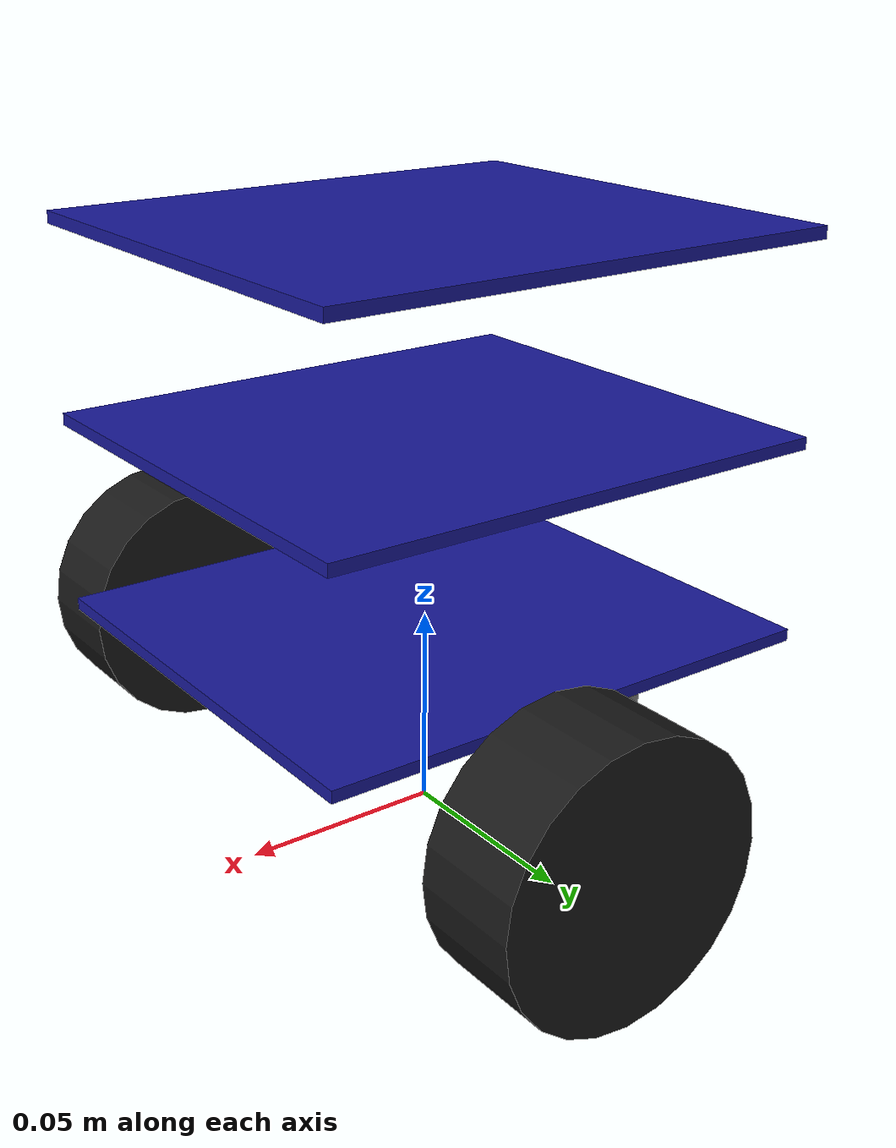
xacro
<?xml version="1.0"?>
<robot xmlns:xacro="http://www.ros.org/wiki/xacro" name="indigobot">

  <!-- Properties                                                         -->
  <!-- CONFIRMED values come from earlier bring-up/measurement sessions.  -->
  <!-- RECONSTRUCTED/PLACEHOLDER values were not pinned down precisely    -->
  <!-- before and should be checked against the real robot.               -->

  <!-- CONFIRMED: measured with calipers -->
  <xacro:property name="wheel_radius" value="0.0325"/>      <!-- 65mm JGA25-371 wheels -->
  <xacro:property name="wheel_separation" value="0.170"/>   <!-- center-to-center -->
  <xacro:property name="caster_radius" value="0.01235"/>    <!-- 24.70mm diameter caster -->
  <xacro:property name="wheel_x_offset" value="0.021"/>     <!-- wheel axle, forward of plate center -->
  <xacro:property name="caster_x_offset" value="-0.057"/>   <!-- caster, rear of plate center -->

  <!-- CONFIRMED: chassis stack -->
  <xacro:property name="plate_length" value="0.130"/>
  <xacro:property name="plate_width" value="0.115"/>
  <xacro:property name="plate_thickness" value="0.003"/>
  <xacro:property name="standoff_bottom_to_middle" value="0.045"/>
  <xacro:property name="standoff_middle_to_top" value="0.045"/>

  <!-- RECONSTRUCTED: not measured, adjust if you have real values -->
  <xacro:property name="wheel_width" value="0.026"/>
  <xacro:property name="plate_mass" value="0.1"/>      <!-- per plate, placeholder -->
  <xacro:property name="wheel_mass" value="0.05"/>     <!-- placeholder -->
  <xacro:property name="caster_mass" value="0.02"/>    <!-- placeholder -->

  <!-- Derived plate stack heights (relative to base_link origin) -->
  <xacro:property name="z_middle_plate" value="${plate_thickness + standoff_bottom_to_middle}"/>
  <xacro:property name="z_top_plate" value="${z_middle_plate + plate_thickness + standoff_middle_to_top}"/>

  <!-- Materials                                                          -->
  <material name="indigo_blue">
    <color rgba="0.1 0.1 0.6 1.0"/>
  </material>
  <material name="black">
    <color rgba="0.1 0.1 0.1 1.0"/>
  </material>
  <material name="grey">
    <color rgba="0.5 0.5 0.5 1.0"/>
  </material>

  <!-- Inertia macros                                                     -->
  <xacro:macro name="box_inertia" params="mass x y z">
    <inertial>
      <mass value="${mass}"/>
      <inertia
        ixx="${(1/12) * mass * (y*y + z*z)}" ixy="0.0" ixz="0.0"
        iyy="${(1/12) * mass * (x*x + z*z)}" iyz="0.0"
        izz="${(1/12) * mass * (x*x + y*y)}"/>
    </inertial>
  </xacro:macro>

  <xacro:macro name="cylinder_inertia" params="mass r h">
    <inertial>
      <mass value="${mass}"/>
      <inertia
        ixx="${(1/12) * mass * (3*r*r + h*h)}" ixy="0.0" ixz="0.0"
        iyy="${(1/12) * mass * (3*r*r + h*h)}" iyz="0.0"
        izz="${0.5 * mass * r*r}"/>
    </inertial>
  </xacro:macro>

  <xacro:macro name="sphere_inertia" params="mass r">
    <inertial>
      <mass value="${mass}"/>
      <inertia
        ixx="${0.4 * mass * r*r}" ixy="0.0" ixz="0.0"
        iyy="${0.4 * mass * r*r}" iyz="0.0"
        izz="${0.4 * mass * r*r}"/>
    </inertial>
  </xacro:macro>

  <!-- base_footprint -> base_link                                       -->
  <!-- CONFIRMED: this Z offset is what got the robot sitting correctly   -->
  <!-- in RViz the first time around.                                     -->
  <link name="base_footprint"/>

  <joint name="base_joint" type="fixed">
    <parent link="base_footprint"/>
    <child link="base_link"/>
    <origin xyz="0 0 ${wheel_radius * 1.5}" rpy="0 0 0"/>
  </joint>

  <!-- base_link (bottom plate)                                          -->
  <link name="base_link">
    <visual>
      <geometry>
        <box size="${plate_length} ${plate_width} ${plate_thickness}"/>
      </geometry>
      <material name="indigo_blue"/>
    </visual>
    <collision>
      <geometry>
        <box size="${plate_length} ${plate_width} ${plate_thickness}"/>
      </geometry>
    </collision>
    <xacro:box_inertia mass="${plate_mass}" x="${plate_length}" y="${plate_width}" z="${plate_thickness}"/>
  </link>

  <!-- Middle and top plates (fixed, stacked on standoffs)                -->
  <link name="middle_link">
    <visual>
      <geometry>
        <box size="${plate_length} ${plate_width} ${plate_thickness}"/>
      </geometry>
      <material name="indigo_blue"/>
    </visual>
    <collision>
      <geometry>
        <box size="${plate_length} ${plate_width} ${plate_thickness}"/>
      </geometry>
    </collision>
    <xacro:box_inertia mass="${plate_mass}" x="${plate_length}" y="${plate_width}" z="${plate_thickness}"/>
  </link>

  <joint name="middle_plate_joint" type="fixed">
    <parent link="base_link"/>
    <child link="middle_link"/>
    <origin xyz="0 0 ${z_middle_plate}" rpy="0 0 0"/>
  </joint>

  <link name="top_link">
    <visual>
      <geometry>
        <box size="${plate_length} ${plate_width} ${plate_thickness}"/>
      </geometry>
      <material name="indigo_blue"/>
    </visual>
    <collision>
      <geometry>
        <box size="${plate_length} ${plate_width} ${plate_thickness}"/>
      </geometry>
    </collision>
    <xacro:box_inertia mass="${plate_mass}" x="${plate_length}" y="${plate_width}" z="${plate_thickness}"/>
  </link>

  <joint name="top_plate_joint" type="fixed">
    <parent link="base_link"/>
    <child link="top_link"/>
    <origin xyz="0 0 ${z_top_plate}" rpy="0 0 0"/>
  </joint>

  <!-- Wheel macro                                                        -->
  <!-- CONFIRMED: Z offset formula (-wheel_radius * 0.5) from earlier      -->
  <!-- bring-up. X/Y offsets from measured wheel axle position.            -->
  <!-- IMPORTANT: right wheel is instantiated first, below, to match the  -->
  <!-- index assumption hardcoded in indigobot_interface.cpp (index 0 =   -->
  <!-- right, index 1 = left).                                            -->
  <xacro:macro name="wheel" params="prefix reflect">
    <link name="wheel_${prefix}_link">
      <visual>
        <origin xyz="0 0 0" rpy="${pi/2} 0 0"/>
        <geometry>
          <cylinder radius="${wheel_radius}" length="${wheel_width}"/>
        </geometry>
        <material name="black"/>
      </visual>
      <collision>
        <origin xyz="0 0 0" rpy="${pi/2} 0 0"/>
        <geometry>
          <cylinder radius="${wheel_radius}" length="${wheel_width}"/>
        </geometry>
      </collision>
      <xacro:cylinder_inertia mass="${wheel_mass}" r="${wheel_radius}" h="${wheel_width}"/>
    </link>

    <joint name="wheel_${prefix}_joint" type="continuous">
      <parent link="base_link"/>
      <child link="wheel_${prefix}_link"/>
      <origin xyz="${wheel_x_offset} ${reflect * wheel_separation / 2} ${-wheel_radius * 0.5}" rpy="0 0 0"/>
      <axis xyz="0 1 0"/>
    </joint>
  </xacro:macro>

  <!-- right wheel listed first: matches hardware interface index order -->
  <xacro:wheel prefix="right" reflect="-1"/>
  <xacro:wheel prefix="left" reflect="1"/>

  <!-- Caster                                                             -->
  <!-- CONFIRMED: Z offset formula from earlier bring-up.                 -->
  <link name="caster_link">
    <visual>
      <geometry>
        <sphere radius="${caster_radius}"/>
      </geometry>
      <material name="grey"/>
    </visual>
    <collision>
      <geometry>
        <sphere radius="${caster_radius}"/>
      </geometry>
    </collision>
    <xacro:sphere_inertia mass="${caster_mass}" r="${caster_radius}"/>
  </link>

  <joint name="caster_joint" type="fixed">
    <parent link="base_link"/>
    <child link="caster_link"/>
    <origin xyz="${caster_x_offset} 0 ${-wheel_radius * 1.5 + caster_radius}" rpy="0 0 0"/>
  </joint>

  <!-- ros2_control                                                       -->
  <!-- Joint order matters: right wheel must be listed first to match     -->
  <!-- the index 0 = right, index 1 = left assumption in                  -->
  <!-- indigobot_interface.cpp's read()/write() functions.                -->
  <ros2_control name="IndigobotSystem" type="system">
    <hardware>
      <plugin>indigo_firmware/IndigobotInterface</plugin>
      <param name="port">/dev/ttyUSB0</param>
    </hardware>
    <joint name="wheel_right_joint">
      <command_interface name="velocity"/>
      <state_interface name="position"/>
      <state_interface name="velocity"/>
    </joint>
    <joint name="wheel_left_joint">
      <command_interface name="velocity"/>
      <state_interface name="position"/>
      <state_interface name="velocity"/>
    </joint>
  </ros2_control>

</robot>
